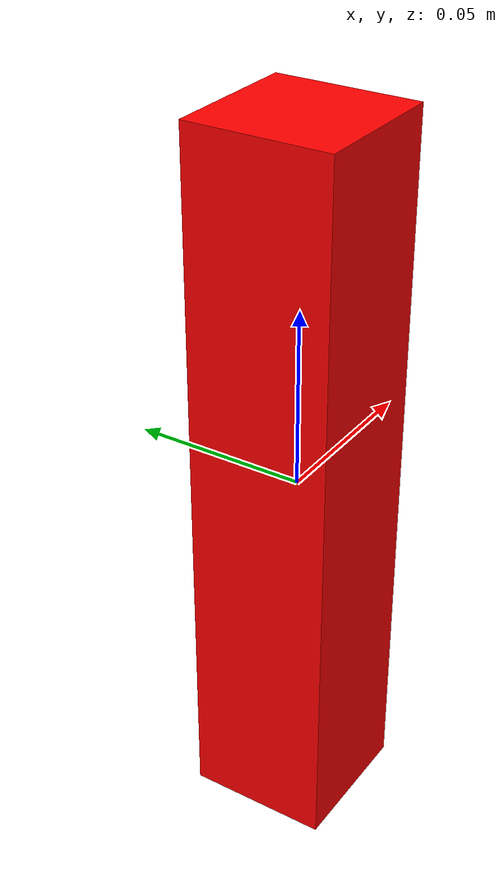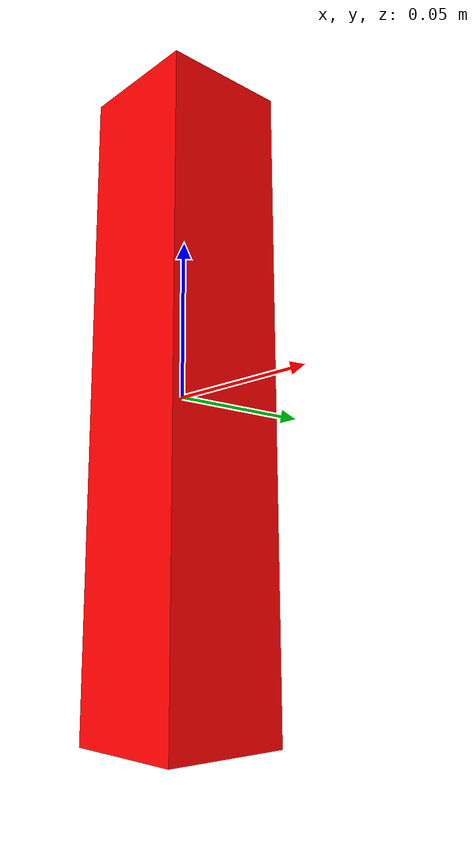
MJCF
<mujoco model="maglev">
    <compiler angle="radian"/>

    <option timestep="0.01" integrator="RK4" gravity="0 0 -9.8" />

    <worldbody>

    <!--Magnet at origin-->
        <body name="magnet" pos="0 0 0">
            <geom type="box" size="0.02 .02 0.1" rgba="1 0 0 1"/>
        </body>

        <!--Ball with slider joint-->
        <body name="ball" pos="0 0 -0.05">
            <geom name="ball_sphere" type="sphere" size="0.01" rgba="0 0 1 1" density="1000"/>
            <joint name="ball_slide" type="slide" axis="0 0 1" damping="0.1"/>
        </body>
    </worldbody>

    <actuator>
        <motor name="magnet_motor" joint="ball_slide" ctrlrange="0 5" gear="1"/>
    </actuator>
    </mujoco>
